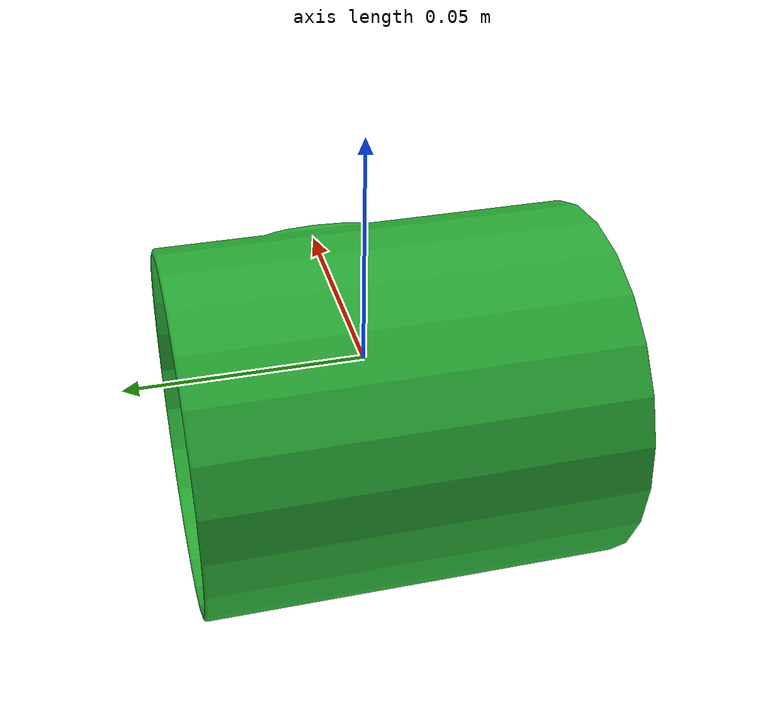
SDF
<?xml version='1.0'?>
<sdf version="1.6">
    <model name="mesh">
        <static>0</static>
        <self_collide>0</self_collide>
        <allow_auto_disable>0</allow_auto_disable>

        <frame name="object_frame">
            <pose frame="/world">0 0 0 0 -0 0 </pose>
        </frame>

        <pose frame="/world">0 0 0 0 -0 0</pose>

        <link name="link">

            <gravity>1</gravity>
            <self_collide>0</self_collide>
            <kinematic>0</kinematic>

            <frame name="link_frame">
                <pose frame="object_frame">0 0 0 0 -0 0</pose>
            </frame>

            <!-- red green blue offsets: model pivot point -->
            <!-- 32 is just half of the voxelgrid dimension (64)-->

            <inertial>
                <mass>0.5</mass>
                <inertia>
                    <ixx>-0.08934</ixx>
                    <ixy>-0.01335</ixy>
                    <ixz>-0.00329</ixz>
                    <iyy>-0.00538</iyy>
                    <iyz>0.01664</iyz>
                    <izz>-0.08903</izz>
                </inertia>

                <frame name="link_inertia_frame">
                    <pose frame="link_frame">0 0 0 0 -0 0</pose>
                </frame>

                <pose frame="link_inertia_frame">0.0 0.0 0.0 0 0 0                     </pose>
            </inertial>

            <collision name="collision">
                <max_contacts>20</max_contacts>

                <frame name="collision_frame">
                    <pose frame="link_frame">0 0 0 0 -0 0</pose>
                </frame>
                <pose frame="collision_frame">0 0 0 0 -0 0</pose>

                <geometry>
                    <mesh>
                        <uri>model:///assets/shapenet_sdf/category_3/obj_64/mesh.stl</uri>
                        <!-- Scaling factor applied to the mesh -->
                        <scale>0.15 0.15 0.15</scale>
                    </mesh>
                </geometry>
                <!-- http://sdformat.org/spec?ver=1.6&elem=collision#surface_soft_contact -->

                <surface>

                    <friction>
                    <ode>
                        <mu>0.95</mu>
                        <mu2>0.95</mu2>
                    </ode>
                    </friction>

                    <bounce>
                    <restitution_coefficient>0.3</restitution_coefficient>
                    <!-- lower the value. This will dissipate more energy during collisions, leading to a more dampened bounce -->
                    <threshold>0.01</threshold>
                    </bounce>

                </surface>
            </collision>

            <visual name="visual">
                <cast_shadows>1</cast_shadows>
                <transparency>0</transparency>

                <frame name="visual_frame">
                    <pose frame="link_frame">0 0 0 0 -0 0</pose>
                </frame>
                <pose frame="visual_frame">0 0 0 0 -0 0</pose>

                <material>

                    <script>
                        <uri>file://media/materials/scripts/gazebo.material</uri>
                        <name>Gazebo/Green</name>
                    </script>
                    <shader type="vertex">
                        <normal_map>__default__</normal_map>
                    </shader>

                    <lighting>1</lighting>
                    <ambient>0.15 0.75 0.35 1</ambient>
                    <diffuse>0.1 0.95 0.25 1</diffuse>
                    <specular>0.01 0.01 0.01 1</specular>
                    <emissive>0 0 0 1</emissive>
                </material>

                <geometry>
                    <mesh>
                        <uri>model:///assets/shapenet_sdf/category_3/obj_64/mesh.stl</uri>
                        <!-- Scaling factor applied to the mesh -->
                        <scale>0.15 0.15 0.15</scale>
                    </mesh>
                </geometry>
            </visual>
        </link>
    </model>

</sdf>
